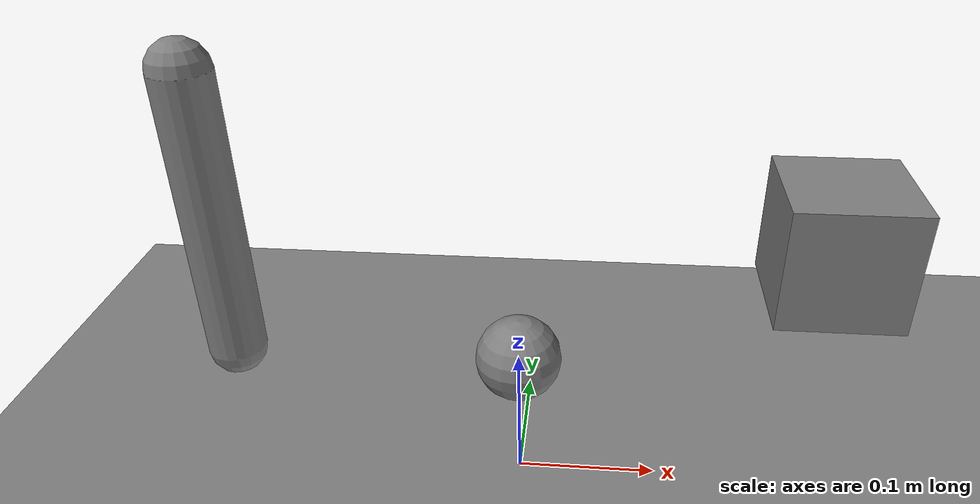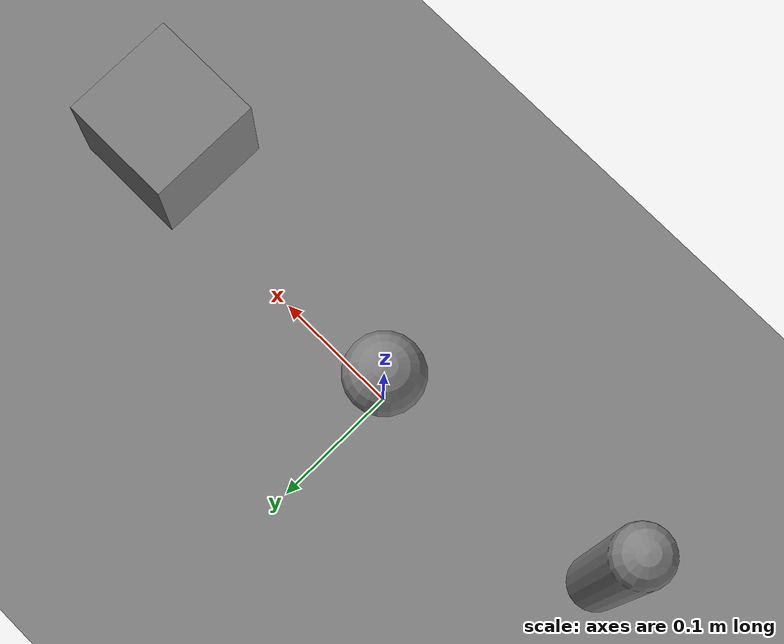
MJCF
<!-- ONLY for optional engine API tests. NOT SO-101, NOT the official task. -->
<mujoco model="synthetic_engineering_test_not_robots">
  <option timestep="0.002" gravity="0 0 0"/>
  <worldbody>
    <light pos="0 0 3"/>
    <camera name="top" pos="0 0 2"/>
    <geom type="plane" size="1 1 0.01"/>
    <body name="left_base" pos="-0.2 0 0.2">
      <joint name="left_joint" type="hinge" axis="0 1 0"/>
      <geom type="capsule" size="0.02 0.1" mass="1"/>
    </body>
    <body name="right_base" pos="0.2 0 0.2">
      <joint name="right_joint" type="slide" axis="0 1 0"/>
      <geom type="box" size="0.04 0.04 0.04" mass="1"/>
    </body>
    <body name="object" pos="0 0 0.1">
      <freejoint name="object_free"/>
      <geom type="sphere" size="0.03" mass="0.05"/>
    </body>
  </worldbody>
  <actuator>
    <motor name="left_motor" joint="left_joint" ctrllimited="true" ctrlrange="-1 1"/>
    <motor name="right_motor" joint="right_joint" ctrllimited="true" ctrlrange="-2 2"/>
  </actuator>
</mujoco>
